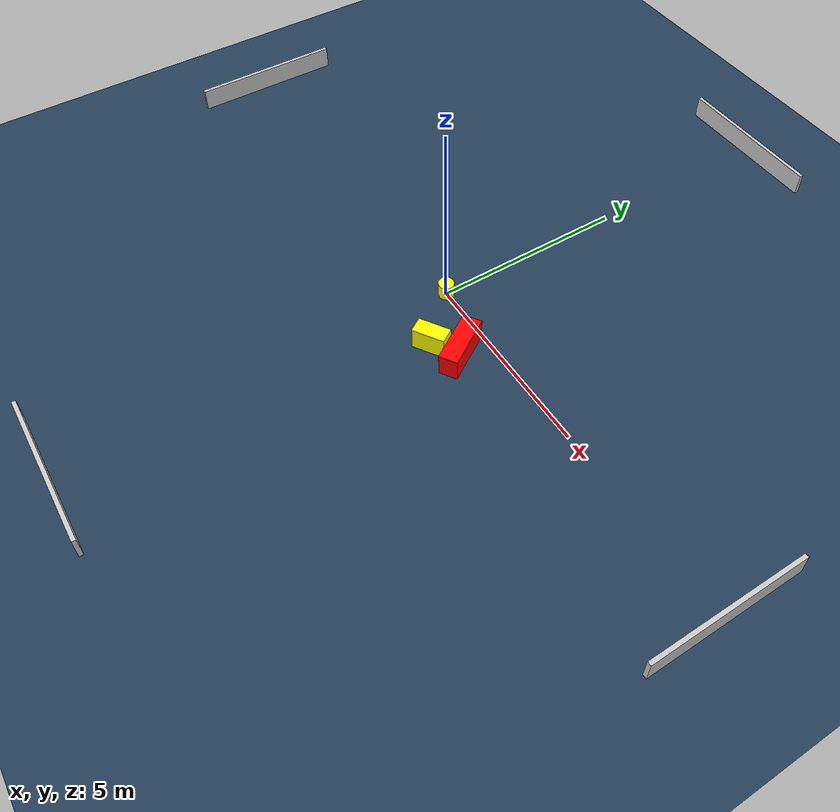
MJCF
<?xml version="1.0" ?>
<mujoco model="generated_environment">
  <option timestep="0.01" integrator="RK4" cone="elliptic"/>
  <default>
    <geom density="1"/>
  </default>
  <asset>
    <texture builtin="gradient" height="3072" name="skybox" rgb1="0.3 0.5 0.7" rgb2="0 0 0" type="skybox" width="512"/>
    <texture builtin="checker" height="300" name="groundplane" rgb1="0.2 0.3 0.4" rgb2="0.1 0.2 0.3" type="2d" width="300"/>
    <material name="groundplane" reflectance="0.2" texrepeat="5 5" texture="groundplane"/>
  </asset>
  <worldbody>
    <light dir="0 0 -1" directional="true" pos="0 0 1.5"/>
    <geom condim="3" friction="0.5 0.005 0.001" material="groundplane" name="floor" pos="0 0 0" size="0 0 0.05" type="plane"/>
    <body name="walls">
      <geom name="wall_1" condim="4" pos="-10.0 0.0 0.3" rgba="0.800000011920929 0.800000011920929 0.800000011920929 1.0" size="0.05 2.0 0.3" type="box"/>
      <geom name="wall_2" condim="4" pos="10.0 0.0 0.3" rgba="0.800000011920929 0.800000011920929 0.800000011920929 1.0" size="0.05 2.0 0.3" type="box"/>
      <geom name="wall_3" condim="4" pos="0.0 -10.0 0.3" rgba="0.800000011920929 0.800000011920929 0.800000011920929 1.0" size="2.0 0.05 0.3" type="box"/>
      <geom name="wall_4" condim="4" pos="0.0 10.0 0.3" rgba="0.800000011920929 0.800000011920929 0.800000011920929 1.0" size="2.0 0.05 0.3" type="box"/>
    </body>
    <body name="robot">
      <joint name="joint_x" type="slide" pos="0 0 0" axis="1 0 0"/>
      <joint name="joint_y" type="slide" pos="0 0 0" axis="0 1 0"/>
      <geom name="robot" type="cylinder" pos="0.0 0.0 0.2" size="0.2 0.2 0.0" mass="5.0" friction="1.0 0.005 0.0001" condim="4" rgba="1.0 1.0 0.0 1.0"/>
    </body>
    <body name="obstacle_1_movable">
      <geom name="obstacle_1_movable" condim="4" pos="1.2073401414907858 -1.180747958724775 0.3" euler="0 0 302.7297824878313" friction="0.0 0.005 0.001" rgba="1.0 1.0 0.0 1.0" size="0.20197666413828386 0.4145401493136319 0.3" type="box" mass="0.1"/>
      <joint type="free"/>
    </body>
    <body name="obstacle_2_static">
      <geom name="obstacle_2_static" condim="4" pos="1.7862163471748747 -0.747880782418761 0.3" euler="0 0 302.4908019174754" friction="0.0 0.005 0.001" rgba="1.0 0.0 0.0 1.0" size="0.6902257724191668 0.23766552246803369 0.3" type="box"/>
    </body>
  </worldbody>
  <actuator>
    <motor name="actuator_x" joint="joint_x" gear="1" ctrlrange="-1 1"/>
    <motor name="actuator_y" joint="joint_y" gear="1" ctrlrange="-1 1"/>
  </actuator>
</mujoco>
